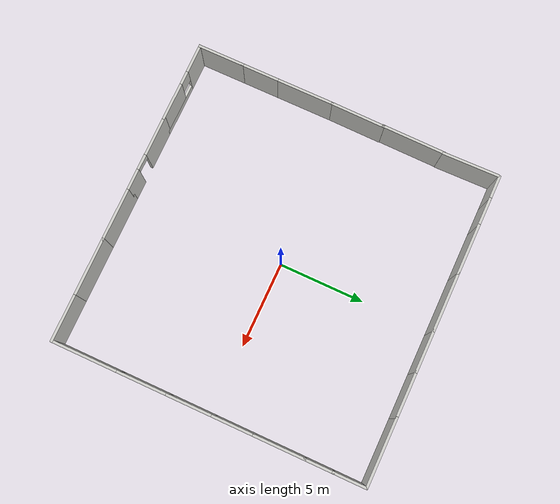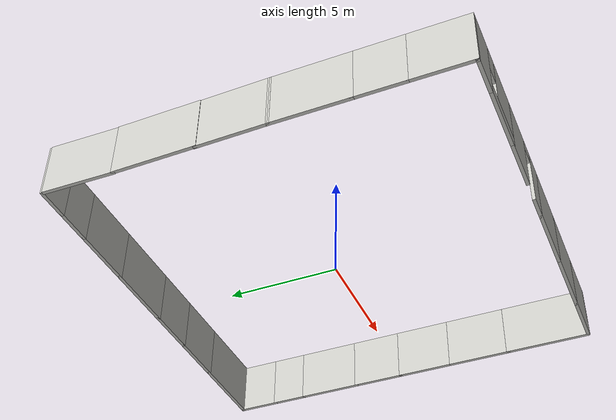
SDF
<?xml version='1.0'?>
<sdf version='1.7'>
  <model name='gazebo_model'>
    <pose>0.030566 -0.056543 0 0 -0 0</pose>
    <link name='Wall_18'>
      <collision name='Wall_18_Collision'>
        <geometry>
          <box>
            <size>3.29048 0.15 2.5</size>
          </box>
        </geometry>
        <pose>0 0 1.25 0 -0 0</pose>
      </collision>
      <visual name='Wall_18_Visual'>
        <pose>0 0 1.25 0 -0 0</pose>
        <geometry>
          <box>
            <size>3.29048 0.15 2.5</size>
          </box>
        </geometry>
        <material>
          <script>
            <uri>file://media/materials/scripts/gazebo.material</uri>
            <name>Gazebo/CeilingTiled</name>
          </script>
          <ambient>1 1 1 1</ambient>
        </material>
        <meta>
          <layer>0</layer>
        </meta>
      </visual>
      <pose>-8.94923 7.30489 0 0 -0 -1.55158</pose>
    </link>
    <link name='Wall_20'>
      <collision name='Wall_20_Collision'>
        <geometry>
          <box>
            <size>3.75022 0.15 2.5</size>
          </box>
        </geometry>
        <pose>0 0 1.25 0 -0 0</pose>
      </collision>
      <visual name='Wall_20_Visual'>
        <pose>0 0 1.25 0 -0 0</pose>
        <geometry>
          <box>
            <size>3.75022 0.15 2.5</size>
          </box>
        </geometry>
        <material>
          <script>
            <uri>file://media/materials/scripts/gazebo.material</uri>
            <name>Gazebo/CeilingTiled</name>
          </script>
          <ambient>1 1 1 1</ambient>
        </material>
        <meta>
          <layer>0</layer>
        </meta>
      </visual>
      <pose>-8.95928 3.93477 0 0 -0 -1.58197</pose>
    </link>
    <link name='Wall_21'>
      <collision name='Wall_21_Collision'>
        <geometry>
          <box>
            <size>3.20984 0.15 2.5</size>
          </box>
        </geometry>
        <pose>0 0 1.25 0 -0 0</pose>
      </collision>
      <visual name='Wall_21_Visual'>
        <pose>0 0 1.25 0 -0 0</pose>
        <geometry>
          <box>
            <size>3.20984 0.15 2.5</size>
          </box>
        </geometry>
        <material>
          <script>
            <uri>file://media/materials/scripts/gazebo.material</uri>
            <name>Gazebo/CeilingTiled</name>
          </script>
          <ambient>1 1 1 1</ambient>
        </material>
        <meta>
          <layer>0</layer>
        </meta>
      </visual>
      <pose>-8.9794 0.604887 0 0 -0 -1.58394</pose>
    </link>
    <link name='Wall_23'>
      <collision name='Wall_23_Collision'>
        <geometry>
          <box>
            <size>3.5 0.15 2.5</size>
          </box>
        </geometry>
        <pose>0 0 1.25 0 -0 0</pose>
      </collision>
      <visual name='Wall_23_Visual'>
        <pose>0 0 1.25 0 -0 0</pose>
        <geometry>
          <box>
            <size>3.5 0.15 2.5</size>
          </box>
        </geometry>
        <material>
          <script>
            <uri>file://media/materials/scripts/gazebo.material</uri>
            <name>Gazebo/CeilingTiled</name>
          </script>
          <ambient>1 1 1 1</ambient>
        </material>
        <meta>
          <layer>0</layer>
        </meta>
      </visual>
      <pose>-8.99951 -2.6 0 0 -0 -1.5708</pose>
    </link>
    <link name='Wall_24'>
      <collision name='Wall_24_Collision'>
        <geometry>
          <box>
            <size>2.25 0.15 2.5</size>
          </box>
        </geometry>
        <pose>0 0 1.25 0 -0 0</pose>
      </collision>
      <visual name='Wall_24_Visual'>
        <pose>0 0 1.25 0 -0 0</pose>
        <geometry>
          <box>
            <size>2.25 0.15 2.5</size>
          </box>
        </geometry>
        <material>
          <script>
            <uri>file://media/materials/scripts/gazebo.material</uri>
            <name>Gazebo/CeilingTiled</name>
          </script>
          <ambient>1 1 1 1</ambient>
        </material>
        <meta>
          <layer>0</layer>
        </meta>
      </visual>
      <pose>-8.99951 -5.325 0 0 -0 -1.5708</pose>
    </link>
    <link name='Wall_25'>
      <collision name='Wall_25_Collision'>
        <geometry>
          <box>
            <size>2.75 0.15 2.5</size>
          </box>
        </geometry>
        <pose>0 0 1.25 0 -0 0</pose>
      </collision>
      <visual name='Wall_25_Visual'>
        <pose>0 0 1.25 0 -0 0</pose>
        <geometry>
          <box>
            <size>2.75 0.15 2.5</size>
          </box>
        </geometry>
        <material>
          <script>
            <uri>file://media/materials/scripts/gazebo.material</uri>
            <name>Gazebo/CeilingTiled</name>
          </script>
          <ambient>1 1 1 1</ambient>
        </material>
        <meta>
          <layer>0</layer>
        </meta>
      </visual>
      <pose>-8.99951 -7.675 0 0 -0 -1.5708</pose>
    </link>
    <link name='Wall_26'>
      <pose>-6.69951 -8.975 0 0 -0 0</pose>
      <visual name='Wall_26_Visual_0'>
        <pose>-1.51253 0 1.25 0 -0 0</pose>
        <geometry>
          <box>
            <size>1.72493 0.15 2.5</size>
          </box>
        </geometry>
        <material>
          <script>
            <uri>file://media/materials/scripts/gazebo.material</uri>
            <name>Gazebo/CeilingTiled</name>
          </script>
          <ambient>1 1 1 1</ambient>
        </material>
        <meta>
          <layer>0</layer>
        </meta>
      </visual>
      <collision name='Wall_26_Collision_0'>
        <geometry>
          <box>
            <size>1.72493 0.15 2.5</size>
          </box>
        </geometry>
        <pose>-1.51253 0 1.25 0 -0 0</pose>
      </collision>
      <visual name='Wall_26_Visual_1'>
        <pose>0.862466 0 0.25 0 -0 0</pose>
        <geometry>
          <box>
            <size>3.02507 0.15 0.5</size>
          </box>
        </geometry>
        <material>
          <script>
            <uri>file://media/materials/scripts/gazebo.material</uri>
            <name>Gazebo/CeilingTiled</name>
          </script>
          <ambient>1 1 1 1</ambient>
        </material>
        <meta>
          <layer>0</layer>
        </meta>
      </visual>
      <collision name='Wall_26_Collision_1'>
        <geometry>
          <box>
            <size>3.02507 0.15 0.5</size>
          </box>
        </geometry>
        <pose>0.862466 0 0.25 0 -0 0</pose>
      </collision>
      <visual name='Wall_26_Visual_2'>
        <pose>1.26247 0 1.5 0 -0 0</pose>
        <geometry>
          <box>
            <size>2.22507 0.15 2</size>
          </box>
        </geometry>
        <material>
          <script>
            <uri>file://media/materials/scripts/gazebo.material</uri>
            <name>Gazebo/CeilingTiled</name>
          </script>
          <ambient>1 1 1 1</ambient>
        </material>
        <meta>
          <layer>0</layer>
        </meta>
      </visual>
      <collision name='Wall_26_Collision_2'>
        <geometry>
          <box>
            <size>2.22507 0.15 2</size>
          </box>
        </geometry>
        <pose>1.26247 0 1.5 0 -0 0</pose>
      </collision>
      <visual name='Wall_26_Visual_3'>
        <pose>-0.250067 0 1.9 0 -0 0</pose>
        <geometry>
          <box>
            <size>0.8 0.15 1.2</size>
          </box>
        </geometry>
        <material>
          <script>
            <uri>file://media/materials/scripts/gazebo.material</uri>
            <name>Gazebo/CeilingTiled</name>
          </script>
          <ambient>1 1 1 1</ambient>
        </material>
        <meta>
          <layer>0</layer>
        </meta>
      </visual>
      <collision name='Wall_26_Collision_3'>
        <geometry>
          <box>
            <size>0.8 0.15 1.2</size>
          </box>
        </geometry>
        <pose>-0.250067 0 1.9 0 -0 0</pose>
      </collision>
    </link>
    <link name='Wall_27'>
      <pose>-2.22451 -8.975 0 0 -0 0</pose>
      <visual name='Wall_27_Visual_0'>
        <pose>-1.06416 0 1.25 0 -0 0</pose>
        <geometry>
          <box>
            <size>2.37168 0.15 2.5</size>
          </box>
        </geometry>
        <material>
          <script>
            <uri>file://media/materials/scripts/gazebo.material</uri>
            <name>Gazebo/CeilingTiled</name>
          </script>
          <ambient>1 1 1 1</ambient>
        </material>
        <meta>
          <layer>0</layer>
        </meta>
      </visual>
      <collision name='Wall_27_Collision_0'>
        <geometry>
          <box>
            <size>2.37168 0.15 2.5</size>
          </box>
        </geometry>
        <pose>-1.06416 0 1.25 0 -0 0</pose>
      </collision>
      <visual name='Wall_27_Visual_1'>
        <pose>1.63584 0 1.25 0 -0 0</pose>
        <geometry>
          <box>
            <size>1.22832 0.15 2.5</size>
          </box>
        </geometry>
        <material>
          <script>
            <uri>file://media/materials/scripts/gazebo.material</uri>
            <name>Gazebo/CeilingTiled</name>
          </script>
          <ambient>1 1 1 1</ambient>
        </material>
        <meta>
          <layer>0</layer>
        </meta>
      </visual>
      <collision name='Wall_27_Collision_1'>
        <geometry>
          <box>
            <size>1.22832 0.15 2.5</size>
          </box>
        </geometry>
        <pose>1.63584 0 1.25 0 -0 0</pose>
      </collision>
      <visual name='Wall_27_Visual_2'>
        <pose>0.571681 0 2.25 0 -0 0</pose>
        <geometry>
          <box>
            <size>0.9 0.15 0.5</size>
          </box>
        </geometry>
        <material>
          <script>
            <uri>file://media/materials/scripts/gazebo.material</uri>
            <name>Gazebo/CeilingTiled</name>
          </script>
          <ambient>1 1 1 1</ambient>
        </material>
        <meta>
          <layer>0</layer>
        </meta>
      </visual>
      <collision name='Wall_27_Collision_2'>
        <geometry>
          <box>
            <size>0.9 0.15 0.5</size>
          </box>
        </geometry>
        <pose>0.571681 0 2.25 0 -0 0</pose>
      </collision>
    </link>
    <link name='Wall_28'>
      <collision name='Wall_28_Collision'>
        <geometry>
          <box>
            <size>3.25 0.15 2.5</size>
          </box>
        </geometry>
        <pose>0 0 1.25 0 -0 0</pose>
      </collision>
      <visual name='Wall_28_Visual'>
        <pose>0 0 1.25 0 -0 0</pose>
        <geometry>
          <box>
            <size>3.25 0.15 2.5</size>
          </box>
        </geometry>
        <material>
          <script>
            <uri>file://media/materials/scripts/gazebo.material</uri>
            <name>Gazebo/CeilingTiled</name>
          </script>
          <ambient>1 1 1 1</ambient>
        </material>
        <meta>
          <layer>0</layer>
        </meta>
      </visual>
      <pose>1.50049 -8.975 0 0 -0 0</pose>
    </link>
    <link name='Wall_29'>
      <collision name='Wall_29_Collision'>
        <geometry>
          <box>
            <size>3.5 0.15 2.5</size>
          </box>
        </geometry>
        <pose>0 0 1.25 0 -0 0</pose>
      </collision>
      <visual name='Wall_29_Visual'>
        <pose>0 0 1.25 0 -0 0</pose>
        <geometry>
          <box>
            <size>3.5 0.15 2.5</size>
          </box>
        </geometry>
        <material>
          <script>
            <uri>file://media/materials/scripts/gazebo.material</uri>
            <name>Gazebo/CeilingTiled</name>
          </script>
          <ambient>1 1 1 1</ambient>
        </material>
        <meta>
          <layer>0</layer>
        </meta>
      </visual>
      <pose>4.72549 -8.975 0 0 -0 0</pose>
    </link>
    <link name='Wall_30'>
      <collision name='Wall_30_Collision'>
        <geometry>
          <box>
            <size>2.75 0.15 2.5</size>
          </box>
        </geometry>
        <pose>0 0 1.25 0 -0 0</pose>
      </collision>
      <visual name='Wall_30_Visual'>
        <pose>0 0 1.25 0 -0 0</pose>
        <geometry>
          <box>
            <size>2.75 0.15 2.5</size>
          </box>
        </geometry>
        <material>
          <script>
            <uri>file://media/materials/scripts/gazebo.material</uri>
            <name>Gazebo/CeilingTiled</name>
          </script>
          <ambient>1 1 1 1</ambient>
        </material>
        <meta>
          <layer>0</layer>
        </meta>
      </visual>
      <pose>7.70049 -8.975 0 0 -0 0</pose>
    </link>
    <link name='Wall_31'>
      <collision name='Wall_31_Collision'>
        <geometry>
          <box>
            <size>4 0.15 2.5</size>
          </box>
        </geometry>
        <pose>0 0 1.25 0 -0 0</pose>
      </collision>
      <visual name='Wall_31_Visual'>
        <pose>0 0 1.25 0 -0 0</pose>
        <geometry>
          <box>
            <size>4 0.15 2.5</size>
          </box>
        </geometry>
        <material>
          <script>
            <uri>file://media/materials/scripts/gazebo.material</uri>
            <name>Gazebo/CeilingTiled</name>
          </script>
          <ambient>1 1 1 1</ambient>
        </material>
        <meta>
          <layer>0</layer>
        </meta>
      </visual>
      <pose>9.00049 -7.05 0 0 -0 1.5708</pose>
    </link>
    <link name='Wall_32'>
      <collision name='Wall_32_Collision'>
        <geometry>
          <box>
            <size>3 0.15 2.5</size>
          </box>
        </geometry>
        <pose>0 0 1.25 0 -0 0</pose>
      </collision>
      <visual name='Wall_32_Visual'>
        <pose>0 0 1.25 0 -0 0</pose>
        <geometry>
          <box>
            <size>3 0.15 2.5</size>
          </box>
        </geometry>
        <material>
          <script>
            <uri>file://media/materials/scripts/gazebo.material</uri>
            <name>Gazebo/CeilingTiled</name>
          </script>
          <ambient>1 1 1 1</ambient>
        </material>
        <meta>
          <layer>0</layer>
        </meta>
      </visual>
      <pose>9.00049 -3.7 0 0 -0 1.5708</pose>
    </link>
    <link name='Wall_33'>
      <collision name='Wall_33_Collision'>
        <geometry>
          <box>
            <size>2.75 0.15 2.5</size>
          </box>
        </geometry>
        <pose>0 0 1.25 0 -0 0</pose>
      </collision>
      <visual name='Wall_33_Visual'>
        <pose>0 0 1.25 0 -0 0</pose>
        <geometry>
          <box>
            <size>2.75 0.15 2.5</size>
          </box>
        </geometry>
        <material>
          <script>
            <uri>file://media/materials/scripts/gazebo.material</uri>
            <name>Gazebo/CeilingTiled</name>
          </script>
          <ambient>1 1 1 1</ambient>
        </material>
        <meta>
          <layer>0</layer>
        </meta>
      </visual>
      <pose>9.00049 -0.975 0 0 -0 1.5708</pose>
    </link>
    <link name='Wall_34'>
      <collision name='Wall_34_Collision'>
        <geometry>
          <box>
            <size>2.5 0.15 2.5</size>
          </box>
        </geometry>
        <pose>0 0 1.25 0 -0 0</pose>
      </collision>
      <visual name='Wall_34_Visual'>
        <pose>0 0 1.25 0 -0 0</pose>
        <geometry>
          <box>
            <size>2.5 0.15 2.5</size>
          </box>
        </geometry>
        <material>
          <script>
            <uri>file://media/materials/scripts/gazebo.material</uri>
            <name>Gazebo/CeilingTiled</name>
          </script>
          <ambient>1 1 1 1</ambient>
        </material>
        <meta>
          <layer>0</layer>
        </meta>
      </visual>
      <pose>9.00049 1.5 0 0 -0 1.5708</pose>
    </link>
    <link name='Wall_35'>
      <collision name='Wall_35_Collision'>
        <geometry>
          <box>
            <size>3 0.15 2.5</size>
          </box>
        </geometry>
        <pose>0 0 1.25 0 -0 0</pose>
      </collision>
      <visual name='Wall_35_Visual'>
        <pose>0 0 1.25 0 -0 0</pose>
        <geometry>
          <box>
            <size>3 0.15 2.5</size>
          </box>
        </geometry>
        <material>
          <script>
            <uri>file://media/materials/scripts/gazebo.material</uri>
            <name>Gazebo/CeilingTiled</name>
          </script>
          <ambient>1 1 1 1</ambient>
        </material>
        <meta>
          <layer>0</layer>
        </meta>
      </visual>
      <pose>9.00049 4.1 0 0 -0 1.5708</pose>
    </link>
    <link name='Wall_36'>
      <collision name='Wall_36_Collision'>
        <geometry>
          <box>
            <size>1.75 0.15 2.5</size>
          </box>
        </geometry>
        <pose>0 0 1.25 0 -0 0</pose>
      </collision>
      <visual name='Wall_36_Visual'>
        <pose>0 0 1.25 0 -0 0</pose>
        <geometry>
          <box>
            <size>1.75 0.15 2.5</size>
          </box>
        </geometry>
        <material>
          <script>
            <uri>file://media/materials/scripts/gazebo.material</uri>
            <name>Gazebo/CeilingTiled</name>
          </script>
          <ambient>1 1 1 1</ambient>
        </material>
        <meta>
          <layer>0</layer>
        </meta>
      </visual>
      <pose>9.00049 6.325 0 0 -0 1.5708</pose>
    </link>
    <link name='Wall_37'>
      <collision name='Wall_37_Collision'>
        <geometry>
          <box>
            <size>2 0.15 2.5</size>
          </box>
        </geometry>
        <pose>0 0 1.25 0 -0 0</pose>
      </collision>
      <visual name='Wall_37_Visual'>
        <pose>0 0 1.25 0 -0 0</pose>
        <geometry>
          <box>
            <size>2 0.15 2.5</size>
          </box>
        </geometry>
        <material>
          <script>
            <uri>file://media/materials/scripts/gazebo.material</uri>
            <name>Gazebo/CeilingTiled</name>
          </script>
          <ambient>1 1 1 1</ambient>
        </material>
        <meta>
          <layer>0</layer>
        </meta>
      </visual>
      <pose>9.00049 8.05 0 0 -0 1.5708</pose>
    </link>
    <link name='Wall_38'>
      <collision name='Wall_38_Collision'>
        <geometry>
          <box>
            <size>4 0.15 2.5</size>
          </box>
        </geometry>
        <pose>0 0 1.25 0 -0 0</pose>
      </collision>
      <visual name='Wall_38_Visual'>
        <pose>0 0 1.25 0 -0 0</pose>
        <geometry>
          <box>
            <size>4 0.15 2.5</size>
          </box>
        </geometry>
        <material>
          <script>
            <uri>file://media/materials/scripts/gazebo.material</uri>
            <name>Gazebo/CeilingTiled</name>
          </script>
          <ambient>1 1 1 1</ambient>
        </material>
        <meta>
          <layer>0</layer>
        </meta>
      </visual>
      <pose>7.07549 8.975 0 0 -0 3.14159</pose>
    </link>
    <link name='Wall_39'>
      <collision name='Wall_39_Collision'>
        <geometry>
          <box>
            <size>2.75 0.15 2.5</size>
          </box>
        </geometry>
        <pose>0 0 1.25 0 -0 0</pose>
      </collision>
      <visual name='Wall_39_Visual'>
        <pose>0 0 1.25 0 -0 0</pose>
        <geometry>
          <box>
            <size>2.75 0.15 2.5</size>
          </box>
        </geometry>
        <material>
          <script>
            <uri>file://media/materials/scripts/gazebo.material</uri>
            <name>Gazebo/CeilingTiled</name>
          </script>
          <ambient>1 1 1 1</ambient>
        </material>
        <meta>
          <layer>0</layer>
        </meta>
      </visual>
      <pose>3.85049 8.975 0 0 -0 3.14159</pose>
    </link>
    <link name='Wall_40'>
      <collision name='Wall_40_Collision'>
        <geometry>
          <box>
            <size>2.5 0.15 2.5</size>
          </box>
        </geometry>
        <pose>0 0 1.25 0 -0 0</pose>
      </collision>
      <visual name='Wall_40_Visual'>
        <pose>0 0 1.25 0 -0 0</pose>
        <geometry>
          <box>
            <size>2.5 0.15 2.5</size>
          </box>
        </geometry>
        <material>
          <script>
            <uri>file://media/materials/scripts/gazebo.material</uri>
            <name>Gazebo/CeilingTiled</name>
          </script>
          <ambient>1 1 1 1</ambient>
        </material>
        <meta>
          <layer>0</layer>
        </meta>
      </visual>
      <pose>1.37549 8.975 0 0 -0 3.14159</pose>
    </link>
    <link name='Wall_44'>
      <collision name='Wall_44_Collision'>
        <geometry>
          <box>
            <size>3.5 0.15 2.5</size>
          </box>
        </geometry>
        <pose>0 0 1.25 0 -0 0</pose>
      </collision>
      <visual name='Wall_44_Visual'>
        <pose>0 0 1.25 0 -0 0</pose>
        <geometry>
          <box>
            <size>3.5 0.15 2.5</size>
          </box>
        </geometry>
        <material>
          <script>
            <uri>file://media/materials/scripts/gazebo.material</uri>
            <name>Gazebo/CeilingTiled</name>
          </script>
          <ambient>1 1 1 1</ambient>
        </material>
        <meta>
          <layer>0</layer>
        </meta>
      </visual>
      <pose>-1.47451 8.975 0 0 -0 3.14159</pose>
    </link>
    <link name='Wall_45'>
      <collision name='Wall_45_Collision'>
        <geometry>
          <box>
            <size>3 0.15 2.5</size>
          </box>
        </geometry>
        <pose>0 0 1.25 0 -0 0</pose>
      </collision>
      <visual name='Wall_45_Visual'>
        <pose>0 0 1.25 0 -0 0</pose>
        <geometry>
          <box>
            <size>3 0.15 2.5</size>
          </box>
        </geometry>
        <material>
          <script>
            <uri>file://media/materials/scripts/gazebo.material</uri>
            <name>Gazebo/CeilingTiled</name>
          </script>
          <ambient>1 1 1 1</ambient>
        </material>
        <meta>
          <layer>0</layer>
        </meta>
      </visual>
      <pose>-4.57451 8.975 0 0 -0 3.14159</pose>
    </link>
    <link name='Wall_46'>
      <collision name='Wall_46_Collision'>
        <geometry>
          <box>
            <size>1.75 0.15 2.5</size>
          </box>
        </geometry>
        <pose>0 0 1.25 0 -0 0</pose>
      </collision>
      <visual name='Wall_46_Visual'>
        <pose>0 0 1.25 0 -0 0</pose>
        <geometry>
          <box>
            <size>1.75 0.15 2.5</size>
          </box>
        </geometry>
        <material>
          <script>
            <uri>file://media/materials/scripts/gazebo.material</uri>
            <name>Gazebo/CeilingTiled</name>
          </script>
          <ambient>1 1 1 1</ambient>
        </material>
        <meta>
          <layer>0</layer>
        </meta>
      </visual>
      <pose>-6.79951 8.975 0 0 -0 3.14159</pose>
    </link>
    <link name='Wall_47'>
      <collision name='Wall_47_Collision'>
        <geometry>
          <box>
            <size>1.5 0.15 2.5</size>
          </box>
        </geometry>
        <pose>0 0 1.25 0 -0 0</pose>
      </collision>
      <visual name='Wall_47_Visual'>
        <pose>0 0 1.25 0 -0 0</pose>
        <geometry>
          <box>
            <size>1.5 0.15 2.5</size>
          </box>
        </geometry>
        <material>
          <script>
            <uri>file://media/materials/scripts/gazebo.material</uri>
            <name>Gazebo/CeilingTiled</name>
          </script>
          <ambient>1 1 1 1</ambient>
        </material>
        <meta>
          <layer>0</layer>
        </meta>
      </visual>
      <pose>-8.27451 8.975 0 0 -0 3.14159</pose>
    </link>
    <static>1</static>
  </model>
</sdf>
